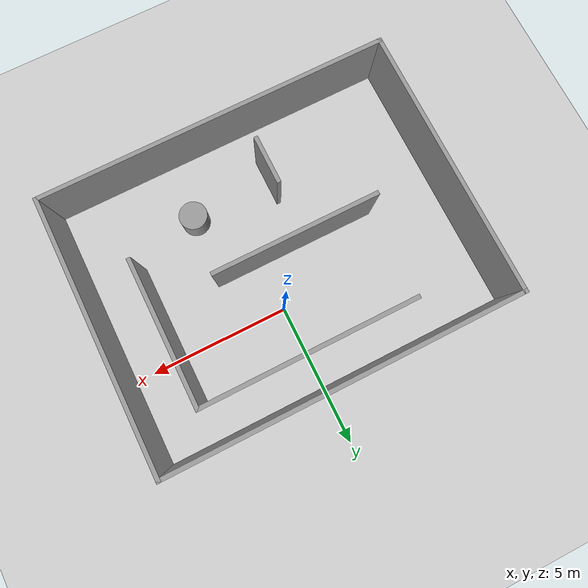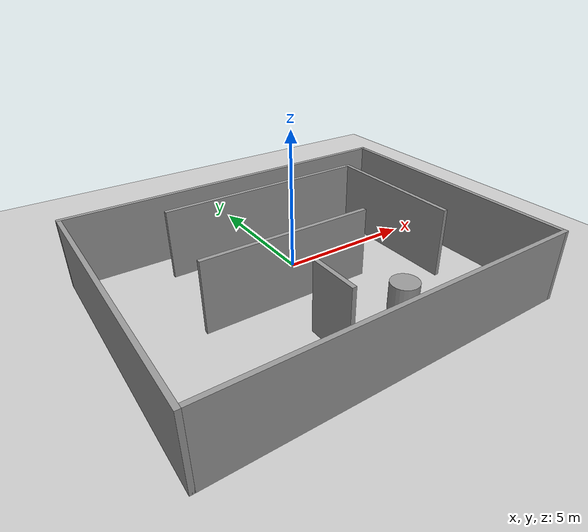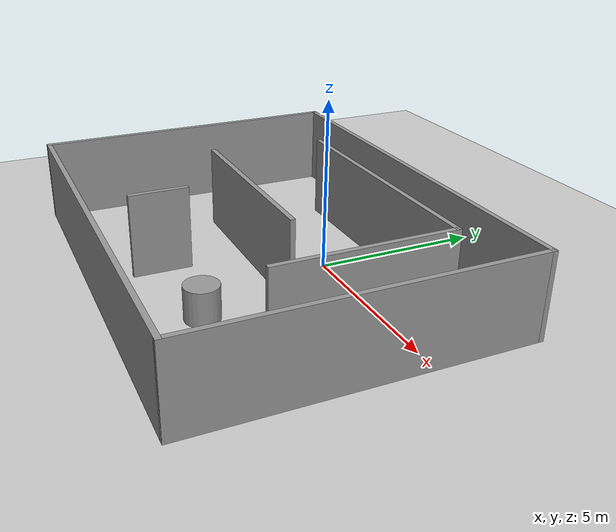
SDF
<sdf version="1.7">
 <world name="default">
  <light name="sun" type="directional">
   <pose>0 0 10 0 -0 0</pose>
   <diffuse>0.8 0.8 0.8 1</diffuse>
   <specular>0.2 0.2 0.2 1</specular>
   <attenuation>
    <range>1000</range>
    <constant>0.9</constant>
    <linear>0.01</linear>
    <quadratic>0.001</quadratic>
   </attenuation>
   <direction>-0.5 0.1 -0.9</direction>
   <spot><inner_angle>0</inner_angle><outer_angle>0</outer_angle><falloff>0</falloff></spot>
  </light>
  <model name="ground_plane">
   <static>1</static>
   <link name="link">
    <collision name="collision">
     <geometry><plane><normal>0 0 1</normal><size>100 100</size></plane></geometry>
     <surface>
      <contact><collide_bitmask>65535</collide_bitmask></contact>
      <friction><ode><mu>100</mu><mu2>50</mu2></ode></friction>
     </surface>
    </collision>
    <visual name="visual">
     <cast_shadows>0</cast_shadows>
     <geometry><plane><normal>0 0 1</normal><size>100 100</size></plane></geometry>
     <material>
      <script><uri>file://media/materials/scripts/gazebo.material</uri><name>Gazebo/Grey</name></script>
     </material>
    </visual>
   </link>
  </model>
  <gravity>0 0 -9.8</gravity>
  <magnetic_field>6e-06 2.3e-05 -4.2e-05</magnetic_field>
  <atmosphere type="adiabatic"/>
  <physics type="ode">
   <max_step_size>0.001</max_step_size>
   <real_time_factor>1</real_time_factor>
   <real_time_update_rate>1000</real_time_update_rate>
  </physics>
  <scene><ambient>0.4 0.4 0.4 1</ambient><background>0.7 0.7 0.7 1</background><shadows>1</shadows></scene>
  <spherical_coordinates>
   <surface_model>EARTH_WGS84</surface_model>
   <latitude_deg>0</latitude_deg>
   <longitude_deg>0</longitude_deg>
   <elevation>0</elevation>
   <heading_deg>0</heading_deg>
  </spherical_coordinates>
  <model name="maze1">
   <pose>-0.59 -1.74 0 0 -0 0</pose>
   <link name="Wall_11">
    <collision name="Wall_11_Collision">
     <geometry><box><size>6 0.15 2.5</size></box></geometry>
     <pose>0 0 1.25 0 -0 0</pose>
    </collision>
    <visual name="Wall_11_Visual">
     <pose>0 0 1.25 0 -0 0</pose>
     <geometry><box><size>6 0.15 2.5</size></box></geometry>
     <material>
      <script><uri>file://media/materials/scripts/gazebo.material</uri><name>Gazebo/Grey</name></script>
      <ambient>1 1 1 1</ambient>
     </material>
     <meta><layer>0</layer></meta>
    </visual>
    <pose>-0.712032 -0.075983 0 0 -0 0</pose>
   </link>
   <link name="Wall_13">
    <collision name="Wall_13_Collision">
     <geometry><box><size>9.75 0.15 2.5</size></box></geometry>
     <pose>0 0 1.25 0 -0 0</pose>
    </collision>
    <visual name="Wall_13_Visual">
     <pose>0 0 1.25 0 -0 0</pose>
     <geometry><box><size>9.75 0.15 2.5</size></box></geometry>
     <material>
      <script><uri>file://media/materials/scripts/gazebo.material</uri><name>Gazebo/Grey</name></script>
      <ambient>1 1 1 1</ambient>
     </material>
     <meta><layer>0</layer></meta>
    </visual>
    <pose>-6.3 0 0 0 -0 -1.5708</pose>
   </link>
   <link name="Wall_14">
    <collision name="Wall_14_Collision">
     <geometry><box><size>12.75 0.15 2.5</size></box></geometry>
     <pose>0 0 1.25 0 -0 0</pose>
    </collision>
    <visual name="Wall_14_Visual">
     <pose>0 0 1.25 0 -0 0</pose>
     <geometry><box><size>12.75 0.15 2.5</size></box></geometry>
     <material>
      <script><uri>file://media/materials/scripts/gazebo.material</uri><name>Gazebo/Grey</name></script>
      <ambient>1 1 1 1</ambient>
     </material>
     <meta><layer>0</layer></meta>
    </visual>
    <pose>-0 -4.8 0 0 -0 0</pose>
   </link>
   <link name="Wall_15">
    <collision name="Wall_15_Collision">
     <geometry><box><size>9.75 0.15 2.5</size></box></geometry>
     <pose>0 0 1.25 0 -0 0</pose>
    </collision>
    <visual name="Wall_15_Visual">
     <pose>0 0 1.25 0 -0 0</pose>
     <geometry><box><size>9.75 0.15 2.5</size></box></geometry>
     <material>
      <script><uri>file://media/materials/scripts/gazebo.material</uri><name>Gazebo/Grey</name></script>
      <ambient>1 1 1 1</ambient>
     </material>
     <meta><layer>0</layer></meta>
    </visual>
    <pose>6.3 0 0 0 -0 1.5708</pose>
   </link>
   <link name="Wall_19">
    <collision name="Wall_19_Collision">
     <geometry><box><size>1.75 0.15 2.5</size></box></geometry>
     <pose>0 0 1.25 0 -0 0</pose>
    </collision>
    <visual name="Wall_19_Visual">
     <pose>0 0 1.25 0 -0 0</pose>
     <geometry><box><size>1.75 0.15 2.5</size></box></geometry>
     <material>
      <script><uri>file://media/materials/scripts/gazebo.material</uri><name>Gazebo/Grey</name></script>
      <ambient>1 1 1 1</ambient>
     </material>
     <meta><layer>0</layer></meta>
    </visual>
    <pose>-0.98204 -2.68621 0 0 -0 -1.5708</pose>
   </link>
   <link name="Wall_3">
    <collision name="Wall_3_Collision">
     <geometry><box><size>12.75 0.15 2.5</size></box></geometry>
     <pose>0 0 1.25 0 -0 0</pose>
    </collision>
    <visual name="Wall_3_Visual">
     <pose>0 0 1.25 0 -0 0</pose>
     <geometry><box><size>12.75 0.15 2.5</size></box></geometry>
     <material>
      <script><uri>file://media/materials/scripts/gazebo.material</uri><name>Gazebo/Grey</name></script>
      <ambient>1 1 1 1</ambient>
     </material>
     <meta><layer>0</layer></meta>
    </visual>
    <pose>-0 4.8 0 0 -0 3.14159</pose>
   </link>
   <link name="Wall_6">
    <collision name="Wall_6_Collision">
     <geometry><box><size>7.75 0.15 2.5</size></box></geometry>
     <pose>0 0 1.25 0 -0 0</pose>
    </collision>
    <visual name="Wall_6_Visual">
     <pose>0 0 1.25 0 -0 0</pose>
     <geometry><box><size>7.75 0.15 2.5</size></box></geometry>
     <material>
      <script><uri>file://media/materials/scripts/gazebo.material</uri><name>Gazebo/Grey</name></script>
      <ambient>1 1 1 1</ambient>
     </material>
     <meta><layer>0</layer></meta>
    </visual>
    <pose>0.605467 3.464 0 0 -0 0</pose>
   </link>
   <link name="Wall_7">
    <collision name="Wall_7_Collision">
     <geometry><box><size>5.25 0.15 2.5</size></box></geometry>
     <pose>0 0 1.25 0 -0 0</pose>
    </collision>
    <visual name="Wall_7_Visual">
     <pose>0 0 1.25 0 -0 0</pose>
     <geometry><box><size>5.25 0.15 2.5</size></box></geometry>
     <material>
      <script><uri>file://media/materials/scripts/gazebo.material</uri><name>Gazebo/Grey</name></script>
      <ambient>1 1 1 1</ambient>
     </material>
     <meta><layer>0</layer></meta>
    </visual>
    <pose>4.40547 0.914005 0 0 -0 -1.5708</pose>
   </link>
   <static>1</static>
  </model>
  <model name="unit_cylinder">
   <pose>1.41087 -4.23714 0.499997 3e-06 4e-06 -0</pose>
   <link name="link">
    <inertial>
     <mass>1</mass>
     <inertia><ixx>0.145833</ixx><ixy>0</ixy><ixz>0</ixz><iyy>0.145833</iyy><iyz>0</iyz><izz>0.125</izz></inertia>
    </inertial>
    <collision name="collision">
     <geometry><cylinder><radius>0.5</radius><length>1</length></cylinder></geometry>
    </collision>
    <visual name="visual">
     <geometry><cylinder><radius>0.5</radius><length>1</length></cylinder></geometry>
     <material>
      <script><name>Gazebo/Grey</name><uri>file://media/materials/scripts/gazebo.material</uri></script>
     </material>
    </visual>
   </link>
  </model>
 </world>
</sdf>
